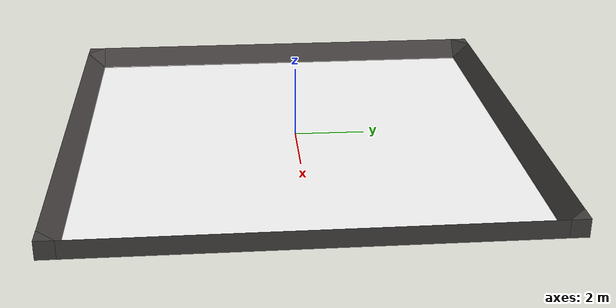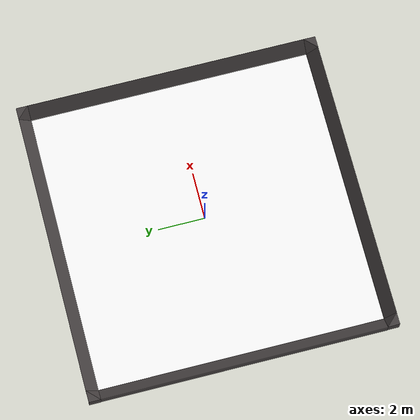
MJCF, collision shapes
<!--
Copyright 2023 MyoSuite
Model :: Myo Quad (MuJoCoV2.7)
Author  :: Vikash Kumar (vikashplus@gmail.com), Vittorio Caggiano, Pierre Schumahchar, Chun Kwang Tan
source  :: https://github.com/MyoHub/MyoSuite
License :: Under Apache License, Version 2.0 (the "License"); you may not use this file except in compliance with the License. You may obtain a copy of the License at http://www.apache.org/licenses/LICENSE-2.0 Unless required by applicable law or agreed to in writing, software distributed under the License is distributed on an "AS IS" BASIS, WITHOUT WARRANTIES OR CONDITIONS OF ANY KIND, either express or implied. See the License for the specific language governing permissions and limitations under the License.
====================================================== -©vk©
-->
<?xml version="1.0" encoding="utf-8"?>
<mujoco model="myoquad_scene">

  <compiler angle="radian" meshdir=".." texturedir=".."/>

  <asset>
    <!-- Scene -©vk©-->
    <texture name="textscene" type="2d" file="../myo_sim/scene/myosuite_scene.png"/>
    <material name="matscene" texture="textscene"/>
    <mesh name="meshscene" file="../myo_sim/scene/myosuite_scene_noFloor.msh" scale=".01 .01 .01"/>

    <!-- Floor -©vk©-->
    <texture name="texfloor" type="2d" height="1" width="1" file="../myo_sim/scene/floor0.png"/>
    <material name="matfloor" reflectance="0.01" texture="texfloor" texrepeat="1 1" texuniform="true"/>

    <!-- Logo -©vk©-->
    <texture name="textlogo" type="2d" file="../myo_sim/scene/myosuite_logo.png"/>
    <mesh name="logo" file="../myo_sim/scene/myosuite_logo.msh" scale="2 2 2"/>
    <material name="matlogo" texture="textlogo"/>

    <!-- Fense -©vk©-->
    <mesh name="pyramid" vertex="0 6 0  0 -6 0  0.5 6 0  0.5 -6 0  0.5 6 0.5  0.5 -6 0.5"/>
    <mesh name="corner" vertex="0 0 0  0 -0.5 0  0.5 -0.5 0  0.5 0 0  0.5 0 0.5  0.5 -0.5 0.5 0 -0.5 0.5"/>
    <material name="fence"  rgba="0.27 0.25 0.25 1"/>
  </asset>

  <statistic extent="6" center="0 -1 1"/>

  <visual>
    <map fogstart="10" fogend="40" force="10" />
    <scale light=".25" framewidth=".005"/>
    <headlight ambient=".5 .5 .5" diffuse="0.50 0.50 0.50" specular="0.50 0.50 0.50"/>
    <global elevation="-15"/>
  </visual>

  <worldbody>
    <light directional="true" diffuse=".5 .5 .5" specular="0.25 0.25 0.25" pos="0 -3 3" dir="0 1 -1" mode="fixed" castshadow="false"/>
    <camera name="topview" pos="0 -10.5 10" euler="+0.8 0 0" mode="fixed"/>

    <geom name="ground" type="plane" size="6 6 0.1" rgba="1 1 1 1" material="matfloor" />
    <geom name="fence1" type="mesh" mesh="pyramid"  pos="-6.00 0 0.0" euler="0 0 3.14" material="fence"/>
    <geom name="fence2" type="mesh" mesh="pyramid"  pos="6.00 0 0.0" euler="0 0 0" material="fence"/>
    <geom name="fence3" type="mesh" mesh="pyramid"  pos="0 6.00 0.0" euler="0 0 1.57" material="fence"/>
    <geom name="fence4" type="mesh" mesh="pyramid"  pos="0 -6.0 0.0" euler="0 0 -1.57" material="fence"/>
    <geom name="corner1" type="mesh" mesh="corner"  pos="-6.0 -6.0 0" euler="0 0 -1.57" material="fence"/>
    <geom name="corner2" type="mesh" mesh="corner"  pos="6.0 -6.0 0" euler="0 0 0" material="fence"/>
    <geom name="corner3" type="mesh" mesh="corner"  pos="6.0 6.0 0" euler="0 0 +1.57" material="fence"/>
    <geom name="corner4" type="mesh" mesh="corner"  pos="-6.0 6.0 0" euler="0 0 3.14" material="fence"/>
    <geom type="mesh" mesh="logo" material="matlogo" group="2" conaffinity="0" contype="0" euler="1.57 0 0" pos="0 6.95 2.1"/>
  </worldbody>
</mujoco>
